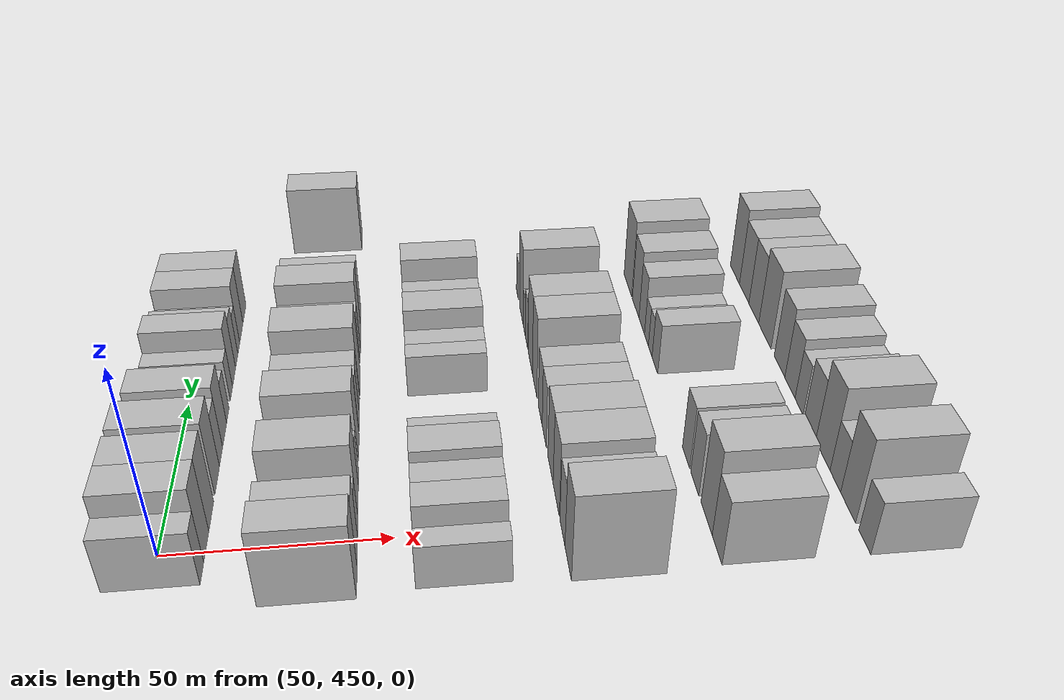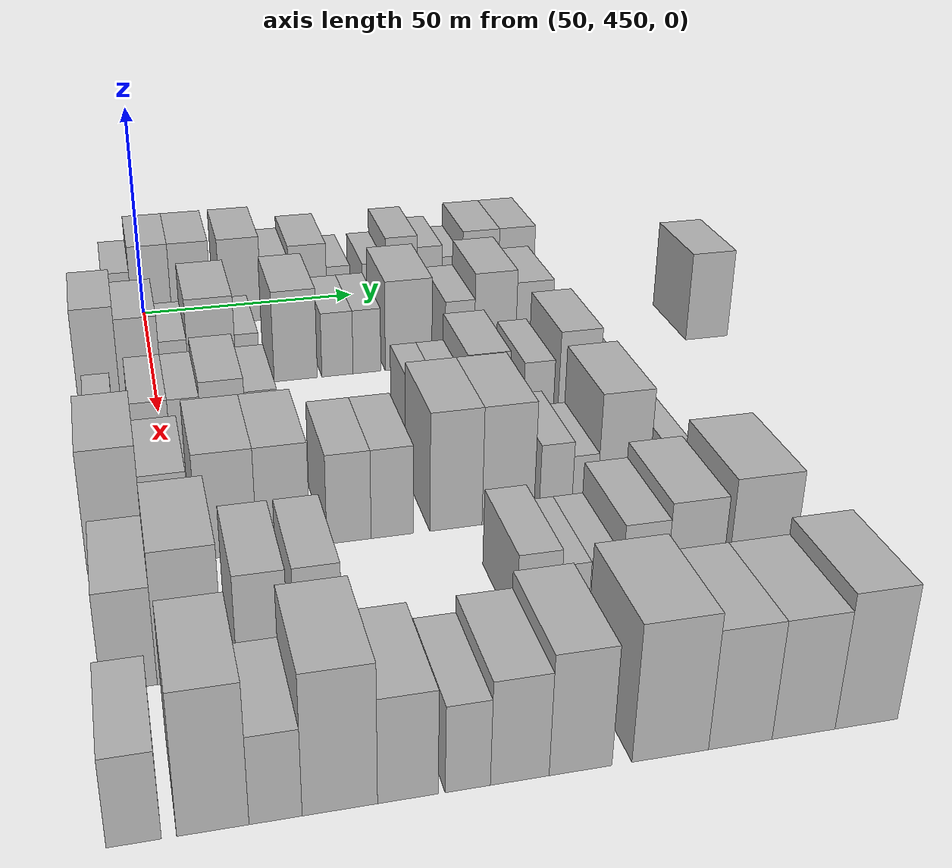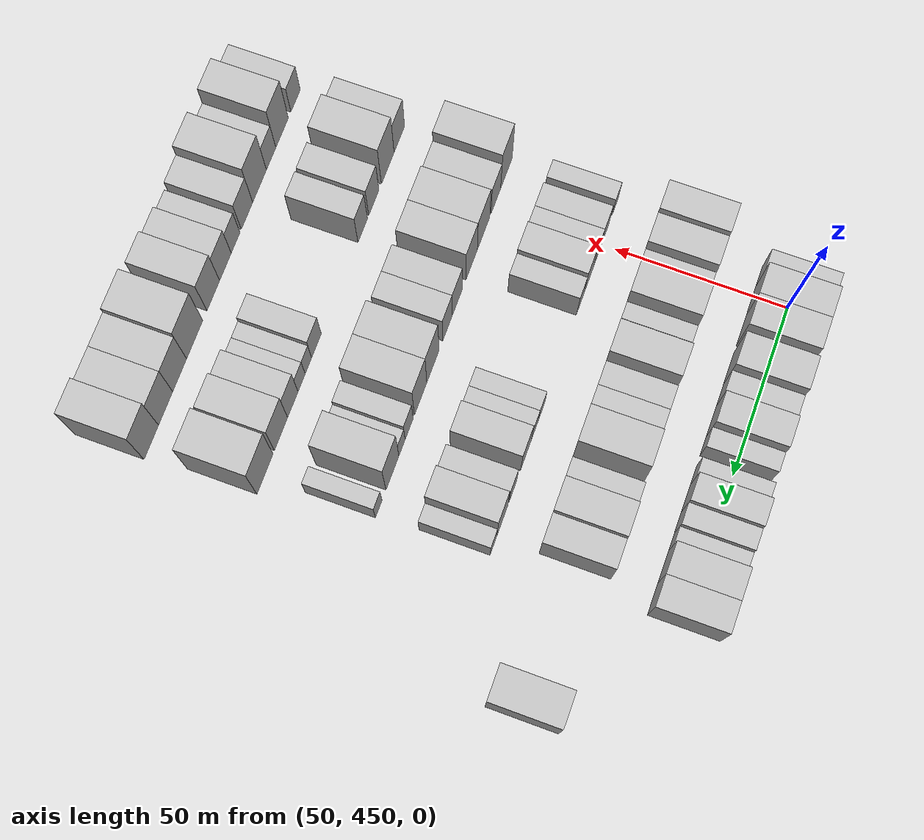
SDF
<sdf version="1.6">
 <world name="default">
  <model name="building_107">
   <static>1</static>
   <pose>50.0000 444.0672 0 0.000000 0.000000 0.000000</pose>
   <link name="link">
    <pose>0 0 7.50 0 0 0</pose>
    <collision name="collision"><geometry><box><size>20.0000 6.1715 15.0000</size></box></geometry></collision>
    <visual name="visual">
     <cast_shadows>0</cast_shadows>
     <geometry><box><size>20.0000 6.1715 15.0000</size></box></geometry>
     <material>
      <script>
       <uri>model://HANNAS_wall/materials/scripts</uri>
       <uri>model://HANNAS_wall/materials/textures</uri>
       <name>vrc/HANNAS_wall</name>
      </script>
     </material>
    </visual>
   </link>
  </model>
  <model name="building_108">
   <static>1</static>
   <pose>50.0000 451.6331 0 0.000000 0.000000 0.000000</pose>
   <link name="link">
    <pose>0 0 10.50 0 0 0</pose>
    <collision name="collision"><geometry><box><size>20.0000 8.9602 21.0000</size></box></geometry></collision>
    <visual name="visual">
     <cast_shadows>0</cast_shadows>
     <geometry><box><size>20.0000 8.9602 21.0000</size></box></geometry>
     <material>
      <script>
       <uri>model://HANNAS_wall/materials/scripts</uri>
       <uri>model://HANNAS_wall/materials/textures</uri>
       <name>vrc/HANNAS_wall</name>
      </script>
     </material>
    </visual>
   </link>
  </model>
  <model name="building_109">
   <static>1</static>
   <pose>50.0000 460.6906 0 0.000000 0.000000 0.000000</pose>
   <link name="link">
    <pose>0 0 10.50 0 0 0</pose>
    <collision name="collision"><geometry><box><size>20.0000 9.1547 21.0000</size></box></geometry></collision>
    <visual name="visual">
     <cast_shadows>0</cast_shadows>
     <geometry><box><size>20.0000 9.1547 21.0000</size></box></geometry>
     <material>
      <script>
       <uri>model://HANNAS_wall/materials/scripts</uri>
       <uri>model://HANNAS_wall/materials/textures</uri>
       <name>vrc/HANNAS_wall</name>
      </script>
     </material>
    </visual>
   </link>
  </model>
  <model name="building_110">
   <static>1</static>
   <pose>50.0000 472.0578 0 0.000000 0.000000 0.000000</pose>
   <link name="link">
    <pose>0 0 10.50 0 0 0</pose>
    <collision name="collision"><geometry><box><size>20.0000 9.5797 21.0000</size></box></geometry></collision>
    <visual name="visual">
     <cast_shadows>0</cast_shadows>
     <geometry><box><size>20.0000 9.5797 21.0000</size></box></geometry>
     <material>
      <script>
       <uri>model://HANNAS_wall/materials/scripts</uri>
       <uri>model://HANNAS_wall/materials/textures</uri>
       <name>vrc/HANNAS_wall</name>
      </script>
     </material>
    </visual>
   </link>
  </model>
  <model name="building_111">
   <static>1</static>
   <pose>50.0000 480.1647 0 0.000000 0.000000 0.000000</pose>
   <link name="link">
    <pose>0 0 7.50 0 0 0</pose>
    <collision name="collision"><geometry><box><size>20.0000 6.6340 15.0000</size></box></geometry></collision>
    <visual name="visual">
     <cast_shadows>0</cast_shadows>
     <geometry><box><size>20.0000 6.6340 15.0000</size></box></geometry>
     <material>
      <script>
       <uri>model://HANNAS_wall/materials/scripts</uri>
       <uri>model://HANNAS_wall/materials/textures</uri>
       <name>vrc/HANNAS_wall</name>
      </script>
     </material>
    </visual>
   </link>
  </model>
  <model name="building_112">
   <static>1</static>
   <pose>50.0000 487.9330 0 0.000000 0.000000 0.000000</pose>
   <link name="link">
    <pose>0 0 9.00 0 0 0</pose>
    <collision name="collision"><geometry><box><size>20.0000 8.9025 18.0000</size></box></geometry></collision>
    <visual name="visual">
     <cast_shadows>0</cast_shadows>
     <geometry><box><size>20.0000 8.9025 18.0000</size></box></geometry>
     <material>
      <script>
       <uri>model://HANNAS_wall/materials/scripts</uri>
       <uri>model://HANNAS_wall/materials/textures</uri>
       <name>vrc/HANNAS_wall</name>
      </script>
     </material>
    </visual>
   </link>
  </model>
  <model name="building_113">
   <static>1</static>
   <pose>50.0000 495.1755 0 0.000000 0.000000 0.000000</pose>
   <link name="link">
    <pose>0 0 6.00 0 0 0</pose>
    <collision name="collision"><geometry><box><size>20.0000 5.5825 12.0000</size></box></geometry></collision>
    <visual name="visual">
     <cast_shadows>0</cast_shadows>
     <geometry><box><size>20.0000 5.5825 12.0000</size></box></geometry>
     <material>
      <script>
       <uri>model://HANNAS_wall/materials/scripts</uri>
       <uri>model://HANNAS_wall/materials/textures</uri>
       <name>vrc/HANNAS_wall</name>
      </script>
     </material>
    </visual>
   </link>
  </model>
  <model name="building_114">
   <static>1</static>
   <pose>50.0000 503.7424 0 0.000000 0.000000 0.000000</pose>
   <link name="link">
    <pose>0 0 6.00 0 0 0</pose>
    <collision name="collision"><geometry><box><size>20.0000 5.5512 12.0000</size></box></geometry></collision>
    <visual name="visual">
     <cast_shadows>0</cast_shadows>
     <geometry><box><size>20.0000 5.5512 12.0000</size></box></geometry>
     <material>
      <script>
       <uri>model://HANNAS_wall/materials/scripts</uri>
       <uri>model://HANNAS_wall/materials/textures</uri>
       <name>vrc/HANNAS_wall</name>
      </script>
     </material>
    </visual>
   </link>
  </model>
  <model name="building_115">
   <static>1</static>
   <pose>50.0000 510.4065 0 0.000000 0.000000 0.000000</pose>
   <link name="link">
    <pose>0 0 9.00 0 0 0</pose>
    <collision name="collision"><geometry><box><size>20.0000 7.7771 18.0000</size></box></geometry></collision>
    <visual name="visual">
     <cast_shadows>0</cast_shadows>
     <geometry><box><size>20.0000 7.7771 18.0000</size></box></geometry>
     <material>
      <script>
       <uri>model://HANNAS_wall/materials/scripts</uri>
       <uri>model://HANNAS_wall/materials/textures</uri>
       <name>vrc/HANNAS_wall</name>
      </script>
     </material>
    </visual>
   </link>
  </model>
  <model name="building_116">
   <static>1</static>
   <pose>50.0000 517.3342 0 0.000000 0.000000 0.000000</pose>
   <link name="link">
    <pose>0 0 7.50 0 0 0</pose>
    <collision name="collision"><geometry><box><size>20.0000 6.0783 15.0000</size></box></geometry></collision>
    <visual name="visual">
     <cast_shadows>0</cast_shadows>
     <geometry><box><size>20.0000 6.0783 15.0000</size></box></geometry>
     <material>
      <script>
       <uri>model://HANNAS_wall/materials/scripts</uri>
       <uri>model://HANNAS_wall/materials/textures</uri>
       <name>vrc/HANNAS_wall</name>
      </script>
     </material>
    </visual>
   </link>
  </model>
  <model name="building_117">
   <static>1</static>
   <pose>50.0000 522.8787 0 0.000000 0.000000 0.000000</pose>
   <link name="link">
    <pose>0 0 6.00 0 0 0</pose>
    <collision name="collision"><geometry><box><size>20.0000 5.0108 12.0000</size></box></geometry></collision>
    <visual name="visual">
     <cast_shadows>0</cast_shadows>
     <geometry><box><size>20.0000 5.0108 12.0000</size></box></geometry>
     <material>
      <script>
       <uri>model://HANNAS_wall/materials/scripts</uri>
       <uri>model://HANNAS_wall/materials/textures</uri>
       <name>vrc/HANNAS_wall</name>
      </script>
     </material>
    </visual>
   </link>
  </model>
  <model name="building_118">
   <static>1</static>
   <pose>50.0000 529.8800 0 0.000000 0.000000 0.000000</pose>
   <link name="link">
    <pose>0 0 9.00 0 0 0</pose>
    <collision name="collision"><geometry><box><size>20.0000 8.9919 18.0000</size></box></geometry></collision>
    <visual name="visual">
     <cast_shadows>0</cast_shadows>
     <geometry><box><size>20.0000 8.9919 18.0000</size></box></geometry>
     <material>
      <script>
       <uri>model://HANNAS_wall/materials/scripts</uri>
       <uri>model://HANNAS_wall/materials/textures</uri>
       <name>vrc/HANNAS_wall</name>
      </script>
     </material>
    </visual>
   </link>
  </model>
  <model name="building_119">
   <static>1</static>
   <pose>50.0000 538.8130 0 0.000000 0.000000 0.000000</pose>
   <link name="link">
    <pose>0 0 9.00 0 0 0</pose>
    <collision name="collision"><geometry><box><size>20.0000 8.8741 18.0000</size></box></geometry></collision>
    <visual name="visual">
     <cast_shadows>0</cast_shadows>
     <geometry><box><size>20.0000 8.8741 18.0000</size></box></geometry>
     <material>
      <script>
       <uri>model://HANNAS_wall/materials/scripts</uri>
       <uri>model://HANNAS_wall/materials/textures</uri>
       <name>vrc/HANNAS_wall</name>
      </script>
     </material>
    </visual>
   </link>
  </model>
  <model name="building_226">
   <static>1</static>
   <pose>82.0000 438.2532 0 0.000000 0.000000 0.000000</pose>
   <link name="link">
    <pose>0 0 10.50 0 0 0</pose>
    <collision name="collision"><geometry><box><size>20.0000 8.6904 21.0000</size></box></geometry></collision>
    <visual name="visual">
     <cast_shadows>0</cast_shadows>
     <geometry><box><size>20.0000 8.6904 21.0000</size></box></geometry>
     <material>
      <script>
       <uri>model://HANNAS_wall/materials/scripts</uri>
       <uri>model://HANNAS_wall/materials/textures</uri>
       <name>vrc/HANNAS_wall</name>
      </script>
     </material>
    </visual>
   </link>
  </model>
  <model name="building_227">
   <static>1</static>
   <pose>82.0000 446.9644 0 0.000000 0.000000 0.000000</pose>
   <link name="link">
    <pose>0 0 9.00 0 0 0</pose>
    <collision name="collision"><geometry><box><size>20.0000 8.7321 18.0000</size></box></geometry></collision>
    <visual name="visual">
     <cast_shadows>0</cast_shadows>
     <geometry><box><size>20.0000 8.7321 18.0000</size></box></geometry>
     <material>
      <script>
       <uri>model://HANNAS_wall/materials/scripts</uri>
       <uri>model://HANNAS_wall/materials/textures</uri>
       <name>vrc/HANNAS_wall</name>
      </script>
     </material>
    </visual>
   </link>
  </model>
  <model name="building_228">
   <static>1</static>
   <pose>82.0000 454.2605 0 0.000000 0.000000 0.000000</pose>
   <link name="link">
    <pose>0 0 6.00 0 0 0</pose>
    <collision name="collision"><geometry><box><size>20.0000 5.8602 12.0000</size></box></geometry></collision>
    <visual name="visual">
     <cast_shadows>0</cast_shadows>
     <geometry><box><size>20.0000 5.8602 12.0000</size></box></geometry>
     <material>
      <script>
       <uri>model://HANNAS_wall/materials/scripts</uri>
       <uri>model://HANNAS_wall/materials/textures</uri>
       <name>vrc/HANNAS_wall</name>
      </script>
     </material>
    </visual>
   </link>
  </model>
  <model name="building_229">
   <static>1</static>
   <pose>82.0000 462.2145 0 0.000000 0.000000 0.000000</pose>
   <link name="link">
    <pose>0 0 10.50 0 0 0</pose>
    <collision name="collision"><geometry><box><size>20.0000 10.0478 21.0000</size></box></geometry></collision>
    <visual name="visual">
     <cast_shadows>0</cast_shadows>
     <geometry><box><size>20.0000 10.0478 21.0000</size></box></geometry>
     <material>
      <script>
       <uri>model://HANNAS_wall/materials/scripts</uri>
       <uri>model://HANNAS_wall/materials/textures</uri>
       <name>vrc/HANNAS_wall</name>
      </script>
     </material>
    </visual>
   </link>
  </model>
  <model name="building_230">
   <static>1</static>
   <pose>82.0000 469.7418 0 0.000000 0.000000 0.000000</pose>
   <link name="link">
    <pose>0 0 6.00 0 0 0</pose>
    <collision name="collision"><geometry><box><size>20.0000 5.0067 12.0000</size></box></geometry></collision>
    <visual name="visual">
     <cast_shadows>0</cast_shadows>
     <geometry><box><size>20.0000 5.0067 12.0000</size></box></geometry>
     <material>
      <script>
       <uri>model://HANNAS_wall/materials/scripts</uri>
       <uri>model://HANNAS_wall/materials/textures</uri>
       <name>vrc/HANNAS_wall</name>
      </script>
     </material>
    </visual>
   </link>
  </model>
  <model name="building_231">
   <static>1</static>
   <pose>82.0000 479.9413 0 0.000000 0.000000 0.000000</pose>
   <link name="link">
    <pose>0 0 10.50 0 0 0</pose>
    <collision name="collision"><geometry><box><size>20.0000 9.3923 21.0000</size></box></geometry></collision>
    <visual name="visual">
     <cast_shadows>0</cast_shadows>
     <geometry><box><size>20.0000 9.3923 21.0000</size></box></geometry>
     <material>
      <script>
       <uri>model://HANNAS_wall/materials/scripts</uri>
       <uri>model://HANNAS_wall/materials/textures</uri>
       <name>vrc/HANNAS_wall</name>
      </script>
     </material>
    </visual>
   </link>
  </model>
  <model name="building_232">
   <static>1</static>
   <pose>82.0000 489.0725 0 0.000000 0.000000 0.000000</pose>
   <link name="link">
    <pose>0 0 7.50 0 0 0</pose>
    <collision name="collision"><geometry><box><size>20.0000 6.8700 15.0000</size></box></geometry></collision>
    <visual name="visual">
     <cast_shadows>0</cast_shadows>
     <geometry><box><size>20.0000 6.8700 15.0000</size></box></geometry>
     <material>
      <script>
       <uri>model://HANNAS_wall/materials/scripts</uri>
       <uri>model://HANNAS_wall/materials/textures</uri>
       <name>vrc/HANNAS_wall</name>
      </script>
     </material>
    </visual>
   </link>
  </model>
  <model name="building_233">
   <static>1</static>
   <pose>82.0000 495.5823 0 0.000000 0.000000 0.000000</pose>
   <link name="link">
    <pose>0 0 7.50 0 0 0</pose>
    <collision name="collision"><geometry><box><size>20.0000 6.1497 15.0000</size></box></geometry></collision>
    <visual name="visual">
     <cast_shadows>0</cast_shadows>
     <geometry><box><size>20.0000 6.1497 15.0000</size></box></geometry>
     <material>
      <script>
       <uri>model://HANNAS_wall/materials/scripts</uri>
       <uri>model://HANNAS_wall/materials/textures</uri>
       <name>vrc/HANNAS_wall</name>
      </script>
     </material>
    </visual>
   </link>
  </model>
  <model name="building_234">
   <static>1</static>
   <pose>82.0000 504.8756 0 0.000000 0.000000 0.000000</pose>
   <link name="link">
    <pose>0 0 10.50 0 0 0</pose>
    <collision name="collision"><geometry><box><size>20.0000 10.4368 21.0000</size></box></geometry></collision>
    <visual name="visual">
     <cast_shadows>0</cast_shadows>
     <geometry><box><size>20.0000 10.4368 21.0000</size></box></geometry>
     <material>
      <script>
       <uri>model://HANNAS_wall/materials/scripts</uri>
       <uri>model://HANNAS_wall/materials/textures</uri>
       <name>vrc/HANNAS_wall</name>
      </script>
     </material>
    </visual>
   </link>
  </model>
  <model name="building_235">
   <static>1</static>
   <pose>82.0000 516.3991 0 0.000000 0.000000 0.000000</pose>
   <link name="link">
    <pose>0 0 7.50 0 0 0</pose>
    <collision name="collision"><geometry><box><size>20.0000 6.6102 15.0000</size></box></geometry></collision>
    <visual name="visual">
     <cast_shadows>0</cast_shadows>
     <geometry><box><size>20.0000 6.6102 15.0000</size></box></geometry>
     <material>
      <script>
       <uri>model://HANNAS_wall/materials/scripts</uri>
       <uri>model://HANNAS_wall/materials/textures</uri>
       <name>vrc/HANNAS_wall</name>
      </script>
     </material>
    </visual>
   </link>
  </model>
  <model name="building_236">
   <static>1</static>
   <pose>82.0000 524.4464 0 0.000000 0.000000 0.000000</pose>
   <link name="link">
    <pose>0 0 10.50 0 0 0</pose>
    <collision name="collision"><geometry><box><size>20.0000 9.4845 21.0000</size></box></geometry></collision>
    <visual name="visual">
     <cast_shadows>0</cast_shadows>
     <geometry><box><size>20.0000 9.4845 21.0000</size></box></geometry>
     <material>
      <script>
       <uri>model://HANNAS_wall/materials/scripts</uri>
       <uri>model://HANNAS_wall/materials/textures</uri>
       <name>vrc/HANNAS_wall</name>
      </script>
     </material>
    </visual>
   </link>
  </model>
  <model name="building_237">
   <static>1</static>
   <pose>82.0000 533.3791 0 0.000000 0.000000 0.000000</pose>
   <link name="link">
    <pose>0 0 9.00 0 0 0</pose>
    <collision name="collision"><geometry><box><size>20.0000 8.3810 18.0000</size></box></geometry></collision>
    <visual name="visual">
     <cast_shadows>0</cast_shadows>
     <geometry><box><size>20.0000 8.3810 18.0000</size></box></geometry>
     <material>
      <script>
       <uri>model://HANNAS_wall/materials/scripts</uri>
       <uri>model://HANNAS_wall/materials/textures</uri>
       <name>vrc/HANNAS_wall</name>
      </script>
     </material>
    </visual>
   </link>
  </model>
  <model name="building_238">
   <static>1</static>
   <pose>82.0000 574.8123 0 0.000000 0.000000 0.000000</pose>
   <link name="link">
    <pose>0 0 10.50 0 0 0</pose>
    <collision name="collision"><geometry><box><size>20.0000 10.1618 21.0000</size></box></geometry></collision>
    <visual name="visual">
     <cast_shadows>0</cast_shadows>
     <geometry><box><size>20.0000 10.1618 21.0000</size></box></geometry>
     <material>
      <script>
       <uri>model://HANNAS_wall/materials/scripts</uri>
       <uri>model://HANNAS_wall/materials/textures</uri>
       <name>vrc/HANNAS_wall</name>
      </script>
     </material>
    </visual>
   </link>
  </model>
  <model name="building_343">
   <static>1</static>
   <pose>114.0000 438.0793 0 0.000000 0.000000 0.000000</pose>
   <link name="link">
    <pose>0 0 6.00 0 0 0</pose>
    <collision name="collision"><geometry><box><size>20.0000 5.4327 12.0000</size></box></geometry></collision>
    <visual name="visual">
     <cast_shadows>0</cast_shadows>
     <geometry><box><size>20.0000 5.4327 12.0000</size></box></geometry>
     <material>
      <script>
       <uri>model://HANNAS_wall/materials/scripts</uri>
       <uri>model://HANNAS_wall/materials/textures</uri>
       <name>vrc/HANNAS_wall</name>
      </script>
     </material>
    </visual>
   </link>
  </model>
  <model name="building_344">
   <static>1</static>
   <pose>114.0000 447.3752 0 0.000000 0.000000 0.000000</pose>
   <link name="link">
    <pose>0 0 7.50 0 0 0</pose>
    <collision name="collision"><geometry><box><size>20.0000 7.1591 15.0000</size></box></geometry></collision>
    <visual name="visual">
     <cast_shadows>0</cast_shadows>
     <geometry><box><size>20.0000 7.1591 15.0000</size></box></geometry>
     <material>
      <script>
       <uri>model://HANNAS_wall/materials/scripts</uri>
       <uri>model://HANNAS_wall/materials/textures</uri>
       <name>vrc/HANNAS_wall</name>
      </script>
     </material>
    </visual>
   </link>
  </model>
  <model name="building_345">
   <static>1</static>
   <pose>114.0000 453.9645 0 0.000000 0.000000 0.000000</pose>
   <link name="link">
    <pose>0 0 7.50 0 0 0</pose>
    <collision name="collision"><geometry><box><size>20.0000 6.0195 15.0000</size></box></geometry></collision>
    <visual name="visual">
     <cast_shadows>0</cast_shadows>
     <geometry><box><size>20.0000 6.0195 15.0000</size></box></geometry>
     <material>
      <script>
       <uri>model://HANNAS_wall/materials/scripts</uri>
       <uri>model://HANNAS_wall/materials/textures</uri>
       <name>vrc/HANNAS_wall</name>
      </script>
     </material>
    </visual>
   </link>
  </model>
  <model name="building_346">
   <static>1</static>
   <pose>114.0000 461.2304 0 0.000000 0.000000 0.000000</pose>
   <link name="link">
    <pose>0 0 9.00 0 0 0</pose>
    <collision name="collision"><geometry><box><size>20.0000 8.5123 18.0000</size></box></geometry></collision>
    <visual name="visual">
     <cast_shadows>0</cast_shadows>
     <geometry><box><size>20.0000 8.5123 18.0000</size></box></geometry>
     <material>
      <script>
       <uri>model://HANNAS_wall/materials/scripts</uri>
       <uri>model://HANNAS_wall/materials/textures</uri>
       <name>vrc/HANNAS_wall</name>
      </script>
     </material>
    </visual>
   </link>
  </model>
  <model name="building_347">
   <static>1</static>
   <pose>114.0000 468.6368 0 0.000000 0.000000 0.000000</pose>
   <link name="link">
    <pose>0 0 7.50 0 0 0</pose>
    <collision name="collision"><geometry><box><size>20.0000 6.3004 15.0000</size></box></geometry></collision>
    <visual name="visual">
     <cast_shadows>0</cast_shadows>
     <geometry><box><size>20.0000 6.3004 15.0000</size></box></geometry>
     <material>
      <script>
       <uri>model://HANNAS_wall/materials/scripts</uri>
       <uri>model://HANNAS_wall/materials/textures</uri>
       <name>vrc/HANNAS_wall</name>
      </script>
     </material>
    </visual>
   </link>
  </model>
  <model name="building_348">
   <static>1</static>
   <pose>114.0000 500.9599 0 0.000000 0.000000 0.000000</pose>
   <link name="link">
    <pose>0 0 6.00 0 0 0</pose>
    <collision name="collision"><geometry><box><size>20.0000 5.4486 12.0000</size></box></geometry></collision>
    <visual name="visual">
     <cast_shadows>0</cast_shadows>
     <geometry><box><size>20.0000 5.4486 12.0000</size></box></geometry>
     <material>
      <script>
       <uri>model://HANNAS_wall/materials/scripts</uri>
       <uri>model://HANNAS_wall/materials/textures</uri>
       <name>vrc/HANNAS_wall</name>
      </script>
     </material>
    </visual>
   </link>
  </model>
  <model name="building_349">
   <static>1</static>
   <pose>114.0000 506.6096 0 0.000000 0.000000 0.000000</pose>
   <link name="link">
    <pose>0 0 6.00 0 0 0</pose>
    <collision name="collision"><geometry><box><size>20.0000 5.8508 12.0000</size></box></geometry></collision>
    <visual name="visual">
     <cast_shadows>0</cast_shadows>
     <geometry><box><size>20.0000 5.8508 12.0000</size></box></geometry>
     <material>
      <script>
       <uri>model://HANNAS_wall/materials/scripts</uri>
       <uri>model://HANNAS_wall/materials/textures</uri>
       <name>vrc/HANNAS_wall</name>
      </script>
     </material>
    </visual>
   </link>
  </model>
  <model name="building_350">
   <static>1</static>
   <pose>114.0000 513.8729 0 0.000000 0.000000 0.000000</pose>
   <link name="link">
    <pose>0 0 9.00 0 0 0</pose>
    <collision name="collision"><geometry><box><size>20.0000 8.6758 18.0000</size></box></geometry></collision>
    <visual name="visual">
     <cast_shadows>0</cast_shadows>
     <geometry><box><size>20.0000 8.6758 18.0000</size></box></geometry>
     <material>
      <script>
       <uri>model://HANNAS_wall/materials/scripts</uri>
       <uri>model://HANNAS_wall/materials/textures</uri>
       <name>vrc/HANNAS_wall</name>
      </script>
     </material>
    </visual>
   </link>
  </model>
  <model name="building_351">
   <static>1</static>
   <pose>114.0000 524.3638 0 0.000000 0.000000 0.000000</pose>
   <link name="link">
    <pose>0 0 7.50 0 0 0</pose>
    <collision name="collision"><geometry><box><size>20.0000 6.3061 15.0000</size></box></geometry></collision>
    <visual name="visual">
     <cast_shadows>0</cast_shadows>
     <geometry><box><size>20.0000 6.3061 15.0000</size></box></geometry>
     <material>
      <script>
       <uri>model://HANNAS_wall/materials/scripts</uri>
       <uri>model://HANNAS_wall/materials/textures</uri>
       <name>vrc/HANNAS_wall</name>
      </script>
     </material>
    </visual>
   </link>
  </model>
  <model name="building_352">
   <static>1</static>
   <pose>114.0000 532.8380 0 0.000000 0.000000 0.000000</pose>
   <link name="link">
    <pose>0 0 10.50 0 0 0</pose>
    <collision name="collision"><geometry><box><size>20.0000 8.6424 21.0000</size></box></geometry></collision>
    <visual name="visual">
     <cast_shadows>0</cast_shadows>
     <geometry><box><size>20.0000 8.6424 21.0000</size></box></geometry>
     <material>
      <script>
       <uri>model://HANNAS_wall/materials/scripts</uri>
       <uri>model://HANNAS_wall/materials/textures</uri>
       <name>vrc/HANNAS_wall</name>
      </script>
     </material>
    </visual>
   </link>
  </model>
  <model name="building_353">
   <static>1</static>
   <pose>114.0000 539.7852 0 0.000000 0.000000 0.000000</pose>
   <link name="link">
    <pose>0 0 6.00 0 0 0</pose>
    <collision name="collision"><geometry><box><size>20.0000 5.2519 12.0000</size></box></geometry></collision>
    <visual name="visual">
     <cast_shadows>0</cast_shadows>
     <geometry><box><size>20.0000 5.2519 12.0000</size></box></geometry>
     <material>
      <script>
       <uri>model://HANNAS_wall/materials/scripts</uri>
       <uri>model://HANNAS_wall/materials/textures</uri>
       <name>vrc/HANNAS_wall</name>
      </script>
     </material>
    </visual>
   </link>
  </model>
  <model name="building_462">
   <static>1</static>
   <pose>146.0000 439.0185 0 0.000000 0.000000 0.000000</pose>
   <link name="link">
    <pose>0 0 12.00 0 0 0</pose>
    <collision name="collision"><geometry><box><size>20.0000 9.7305 24.0000</size></box></geometry></collision>
    <visual name="visual">
     <cast_shadows>0</cast_shadows>
     <geometry><box><size>20.0000 9.7305 24.0000</size></box></geometry>
     <material>
      <script>
       <uri>model://HANNAS_wall/materials/scripts</uri>
       <uri>model://HANNAS_wall/materials/textures</uri>
       <name>vrc/HANNAS_wall</name>
      </script>
     </material>
    </visual>
   </link>
  </model>
  <model name="building_463">
   <static>1</static>
   <pose>146.0000 447.8997 0 0.000000 0.000000 0.000000</pose>
   <link name="link">
    <pose>0 0 9.00 0 0 0</pose>
    <collision name="collision"><geometry><box><size>20.0000 8.0318 18.0000</size></box></geometry></collision>
    <visual name="visual">
     <cast_shadows>0</cast_shadows>
     <geometry><box><size>20.0000 8.0318 18.0000</size></box></geometry>
     <material>
      <script>
       <uri>model://HANNAS_wall/materials/scripts</uri>
       <uri>model://HANNAS_wall/materials/textures</uri>
       <name>vrc/HANNAS_wall</name>
      </script>
     </material>
    </visual>
   </link>
  </model>
  <model name="building_464">
   <static>1</static>
   <pose>146.0000 458.0684 0 0.000000 0.000000 0.000000</pose>
   <link name="link">
    <pose>0 0 10.50 0 0 0</pose>
    <collision name="collision"><geometry><box><size>20.0000 10.3057 21.0000</size></box></geometry></collision>
    <visual name="visual">
     <cast_shadows>0</cast_shadows>
     <geometry><box><size>20.0000 10.3057 21.0000</size></box></geometry>
     <material>
      <script>
       <uri>model://HANNAS_wall/materials/scripts</uri>
       <uri>model://HANNAS_wall/materials/textures</uri>
       <name>vrc/HANNAS_wall</name>
      </script>
     </material>
    </visual>
   </link>
  </model>
  <model name="building_465">
   <static>1</static>
   <pose>146.0000 467.8777 0 0.000000 0.000000 0.000000</pose>
   <link name="link">
    <pose>0 0 10.50 0 0 0</pose>
    <collision name="collision"><geometry><box><size>20.0000 9.3127 21.0000</size></box></geometry></collision>
    <visual name="visual">
     <cast_shadows>0</cast_shadows>
     <geometry><box><size>20.0000 9.3127 21.0000</size></box></geometry>
     <material>
      <script>
       <uri>model://HANNAS_wall/materials/scripts</uri>
       <uri>model://HANNAS_wall/materials/textures</uri>
       <name>vrc/HANNAS_wall</name>
      </script>
     </material>
    </visual>
   </link>
  </model>
  <model name="building_466">
   <static>1</static>
   <pose>146.0000 479.5194 0 0.000000 0.000000 0.000000</pose>
   <link name="link">
    <pose>0 0 9.00 0 0 0</pose>
    <collision name="collision"><geometry><box><size>20.0000 7.9707 18.0000</size></box></geometry></collision>
    <visual name="visual">
     <cast_shadows>0</cast_shadows>
     <geometry><box><size>20.0000 7.9707 18.0000</size></box></geometry>
     <material>
      <script>
       <uri>model://HANNAS_wall/materials/scripts</uri>
       <uri>model://HANNAS_wall/materials/textures</uri>
       <name>vrc/HANNAS_wall</name>
      </script>
     </material>
    </visual>
   </link>
  </model>
  <model name="building_467">
   <static>1</static>
   <pose>146.0000 487.3529 0 0.000000 0.000000 0.000000</pose>
   <link name="link">
    <pose>0 0 9.00 0 0 0</pose>
    <collision name="collision"><geometry><box><size>20.0000 7.6963 18.0000</size></box></geometry></collision>
    <visual name="visual">
     <cast_shadows>0</cast_shadows>
     <geometry><box><size>20.0000 7.6963 18.0000</size></box></geometry>
     <material>
      <script>
       <uri>model://HANNAS_wall/materials/scripts</uri>
       <uri>model://HANNAS_wall/materials/textures</uri>
       <name>vrc/HANNAS_wall</name>
      </script>
     </material>
    </visual>
   </link>
  </model>
  <model name="building_468">
   <static>1</static>
   <pose>146.0000 499.0383 0 0.000000 0.000000 0.000000</pose>
   <link name="link">
    <pose>0 0 12.00 0 0 0</pose>
    <collision name="collision"><geometry><box><size>20.0000 9.6745 24.0000</size></box></geometry></collision>
    <visual name="visual">
     <cast_shadows>0</cast_shadows>
     <geometry><box><size>20.0000 9.6745 24.0000</size></box></geometry>
     <material>
      <script>
       <uri>model://HANNAS_wall/materials/scripts</uri>
       <uri>model://HANNAS_wall/materials/textures</uri>
       <name>vrc/HANNAS_wall</name>
      </script>
     </material>
    </visual>
   </link>
  </model>
  <model name="building_469">
   <static>1</static>
   <pose>146.0000 508.7243 0 0.000000 0.000000 0.000000</pose>
   <link name="link">
    <pose>0 0 12.00 0 0 0</pose>
    <collision name="collision"><geometry><box><size>20.0000 9.6975 24.0000</size></box></geometry></collision>
    <visual name="visual">
     <cast_shadows>0</cast_shadows>
     <geometry><box><size>20.0000 9.6975 24.0000</size></box></geometry>
     <material>
      <script>
       <uri>model://HANNAS_wall/materials/scripts</uri>
       <uri>model://HANNAS_wall/materials/textures</uri>
       <name>vrc/HANNAS_wall</name>
      </script>
     </material>
    </visual>
   </link>
  </model>
  <model name="building_470">
   <static>1</static>
   <pose>146.0000 517.6648 0 0.000000 0.000000 0.000000</pose>
   <link name="link">
    <pose>0 0 7.50 0 0 0</pose>
    <collision name="collision"><geometry><box><size>20.0000 6.1834 15.0000</size></box></geometry></collision>
    <visual name="visual">
     <cast_shadows>0</cast_shadows>
     <geometry><box><size>20.0000 6.1834 15.0000</size></box></geometry>
     <material>
      <script>
       <uri>model://HANNAS_wall/materials/scripts</uri>
       <uri>model://HANNAS_wall/materials/textures</uri>
       <name>vrc/HANNAS_wall</name>
      </script>
     </material>
    </visual>
   </link>
  </model>
  <model name="building_471">
   <static>1</static>
   <pose>146.0000 523.1572 0 0.000000 0.000000 0.000000</pose>
   <link name="link">
    <pose>0 0 6.00 0 0 0</pose>
    <collision name="collision"><geometry><box><size>20.0000 4.8015 12.0000</size></box></geometry></collision>
    <visual name="visual">
     <cast_shadows>0</cast_shadows>
     <geometry><box><size>20.0000 4.8015 12.0000</size></box></geometry>
     <material>
      <script>
       <uri>model://HANNAS_wall/materials/scripts</uri>
       <uri>model://HANNAS_wall/materials/textures</uri>
       <name>vrc/HANNAS_wall</name>
      </script>
     </material>
    </visual>
   </link>
  </model>
  <model name="building_472">
   <static>1</static>
   <pose>146.0000 530.4725 0 0.000000 0.000000 0.000000</pose>
   <link name="link">
    <pose>0 0 12.00 0 0 0</pose>
    <collision name="collision"><geometry><box><size>20.0000 9.8292 24.0000</size></box></geometry></collision>
    <visual name="visual">
     <cast_shadows>0</cast_shadows>
     <geometry><box><size>20.0000 9.8292 24.0000</size></box></geometry>
     <material>
      <script>
       <uri>model://HANNAS_wall/materials/scripts</uri>
       <uri>model://HANNAS_wall/materials/textures</uri>
       <name>vrc/HANNAS_wall</name>
      </script>
     </material>
    </visual>
   </link>
  </model>
  <model name="building_473">
   <static>1</static>
   <pose>146.0000 540.8712 0 0.000000 0.000000 0.000000</pose>
   <link name="link">
    <pose>0 0 6.00 0 0 0</pose>
    <collision name="collision"><geometry><box><size>20.0000 4.9683 12.0000</size></box></geometry></collision>
    <visual name="visual">
     <cast_shadows>0</cast_shadows>
     <geometry><box><size>20.0000 4.9683 12.0000</size></box></geometry>
     <material>
      <script>
       <uri>model://HANNAS_wall/materials/scripts</uri>
       <uri>model://HANNAS_wall/materials/textures</uri>
       <name>vrc/HANNAS_wall</name>
      </script>
     </material>
    </visual>
   </link>
  </model>
  <model name="building_576">
   <static>1</static>
   <pose>178.0000 439.5459 0 0.000000 0.000000 0.000000</pose>
   <link name="link">
    <pose>0 0 9.00 0 0 0</pose>
    <collision name="collision"><geometry><box><size>20.0000 8.4609 18.0000</size></box></geometry></collision>
    <visual name="visual">
     <cast_shadows>0</cast_shadows>
     <geometry><box><size>20.0000 8.4609 18.0000</size></box></geometry>
     <material>
      <script>
       <uri>model://HANNAS_wall/materials/scripts</uri>
       <uri>model://HANNAS_wall/materials/textures</uri>
       <name>vrc/HANNAS_wall</name>
      </script>
     </material>
    </visual>
   </link>
  </model>
  <model name="building_577">
   <static>1</static>
   <pose>178.0000 448.8531 0 0.000000 0.000000 0.000000</pose>
   <link name="link">
    <pose>0 0 12.00 0 0 0</pose>
    <collision name="collision"><geometry><box><size>20.0000 10.1536 24.0000</size></box></geometry></collision>
    <visual name="visual">
     <cast_shadows>0</cast_shadows>
     <geometry><box><size>20.0000 10.1536 24.0000</size></box></geometry>
     <material>
      <script>
       <uri>model://HANNAS_wall/materials/scripts</uri>
       <uri>model://HANNAS_wall/materials/textures</uri>
       <name>vrc/HANNAS_wall</name>
      </script>
     </material>
    </visual>
   </link>
  </model>
  <model name="building_578">
   <static>1</static>
   <pose>178.0000 459.9464 0 0.000000 0.000000 0.000000</pose>
   <link name="link">
    <pose>0 0 9.00 0 0 0</pose>
    <collision name="collision"><geometry><box><size>20.0000 8.0330 18.0000</size></box></geometry></collision>
    <visual name="visual">
     <cast_shadows>0</cast_shadows>
     <geometry><box><size>20.0000 8.0330 18.0000</size></box></geometry>
     <material>
      <script>
       <uri>model://HANNAS_wall/materials/scripts</uri>
       <uri>model://HANNAS_wall/materials/textures</uri>
       <name>vrc/HANNAS_wall</name>
      </script>
     </material>
    </visual>
   </link>
  </model>
  <model name="building_579">
   <static>1</static>
   <pose>178.0000 468.6911 0 0.000000 0.000000 0.000000</pose>
   <link name="link">
    <pose>0 0 9.00 0 0 0</pose>
    <collision name="collision"><geometry><box><size>20.0000 7.4565 18.0000</size></box></geometry></collision>
    <visual name="visual">
     <cast_shadows>0</cast_shadows>
     <geometry><box><size>20.0000 7.4565 18.0000</size></box></geometry>
     <material>
      <script>
       <uri>model://HANNAS_wall/materials/scripts</uri>
       <uri>model://HANNAS_wall/materials/textures</uri>
       <name>vrc/HANNAS_wall</name>
      </script>
     </material>
    </visual>
   </link>
  </model>
  <model name="building_580">
   <static>1</static>
   <pose>178.0000 504.3354 0 0.000000 0.000000 0.000000</pose>
   <link name="link">
    <pose>0 0 7.50 0 0 0</pose>
    <collision name="collision"><geometry><box><size>20.0000 7.2773 15.0000</size></box></geometry></collision>
    <visual name="visual">
     <cast_shadows>0</cast_shadows>
     <geometry><box><size>20.0000 7.2773 15.0000</size></box></geometry>
     <material>
      <script>
       <uri>model://HANNAS_wall/materials/scripts</uri>
       <uri>model://HANNAS_wall/materials/textures</uri>
       <name>vrc/HANNAS_wall</name>
      </script>
     </material>
    </visual>
   </link>
  </model>
  <model name="building_581">
   <static>1</static>
   <pose>178.0000 510.3978 0 0.000000 0.000000 0.000000</pose>
   <link name="link">
    <pose>0 0 6.00 0 0 0</pose>
    <collision name="collision"><geometry><box><size>20.0000 4.8475 12.0000</size></box></geometry></collision>
    <visual name="visual">
     <cast_shadows>0</cast_shadows>
     <geometry><box><size>20.0000 4.8475 12.0000</size></box></geometry>
     <material>
      <script>
       <uri>model://HANNAS_wall/materials/scripts</uri>
       <uri>model://HANNAS_wall/materials/textures</uri>
       <name>vrc/HANNAS_wall</name>
      </script>
     </material>
    </visual>
   </link>
  </model>
  <model name="building_582">
   <static>1</static>
   <pose>178.0000 515.4834 0 0.000000 0.000000 0.000000</pose>
   <link name="link">
    <pose>0 0 6.00 0 0 0</pose>
    <collision name="collision"><geometry><box><size>20.0000 5.3237 12.0000</size></box></geometry></collision>
    <visual name="visual">
     <cast_shadows>0</cast_shadows>
     <geometry><box><size>20.0000 5.3237 12.0000</size></box></geometry>
     <material>
      <script>
       <uri>model://HANNAS_wall/materials/scripts</uri>
       <uri>model://HANNAS_wall/materials/textures</uri>
       <name>vrc/HANNAS_wall</name>
      </script>
     </material>
    </visual>
   </link>
  </model>
  <model name="building_583">
   <static>1</static>
   <pose>178.0000 521.9844 0 0.000000 0.000000 0.000000</pose>
   <link name="link">
    <pose>0 0 9.00 0 0 0</pose>
    <collision name="collision"><geometry><box><size>20.0000 7.6784 18.0000</size></box></geometry></collision>
    <visual name="visual">
     <cast_shadows>0</cast_shadows>
     <geometry><box><size>20.0000 7.6784 18.0000</size></box></geometry>
     <material>
      <script>
       <uri>model://HANNAS_wall/materials/scripts</uri>
       <uri>model://HANNAS_wall/materials/textures</uri>
       <name>vrc/HANNAS_wall</name>
      </script>
     </material>
    </visual>
   </link>
  </model>
  <model name="building_584">
   <static>1</static>
   <pose>178.0000 530.6639 0 0.000000 0.000000 0.000000</pose>
   <link name="link">
    <pose>0 0 10.50 0 0 0</pose>
    <collision name="collision"><geometry><box><size>20.0000 9.6806 21.0000</size></box></geometry></collision>
    <visual name="visual">
     <cast_shadows>0</cast_shadows>
     <geometry><box><size>20.0000 9.6806 21.0000</size></box></geometry>
     <material>
      <script>
       <uri>model://HANNAS_wall/materials/scripts</uri>
       <uri>model://HANNAS_wall/materials/textures</uri>
       <name>vrc/HANNAS_wall</name>
      </script>
     </material>
    </visual>
   </link>
  </model>
  <model name="building_585">
   <static>1</static>
   <pose>178.0000 542.3404 0 0.000000 0.000000 0.000000</pose>
   <link name="link">
    <pose>0 0 12.00 0 0 0</pose>
    <collision name="collision"><geometry><box><size>20.0000 11.6725 24.0000</size></box></geometry></collision>
    <visual name="visual">
     <cast_shadows>0</cast_shadows>
     <geometry><box><size>20.0000 11.6725 24.0000</size></box></geometry>
     <material>
      <script>
       <uri>model://HANNAS_wall/materials/scripts</uri>
       <uri>model://HANNAS_wall/materials/textures</uri>
       <name>vrc/HANNAS_wall</name>
      </script>
     </material>
    </visual>
   </link>
  </model>
  <model name="building_699">
   <static>1</static>
   <pose>210.0000 438.4918 0 0.000000 0.000000 0.000000</pose>
   <link name="link">
    <pose>0 0 7.50 0 0 0</pose>
    <collision name="collision"><geometry><box><size>20.0000 7.2462 15.0000</size></box></geometry></collision>
    <visual name="visual">
     <cast_shadows>0</cast_shadows>
     <geometry><box><size>20.0000 7.2462 15.0000</size></box></geometry>
     <material>
      <script>
       <uri>model://HANNAS_wall/materials/scripts</uri>
       <uri>model://HANNAS_wall/materials/textures</uri>
       <name>vrc/HANNAS_wall</name>
      </script>
     </material>
    </visual>
   </link>
  </model>
  <model name="building_700">
   <static>1</static>
   <pose>210.0000 448.9445 0 0.000000 0.000000 0.000000</pose>
   <link name="link">
    <pose>0 0 12.00 0 0 0</pose>
    <collision name="collision"><geometry><box><size>20.0000 9.6592 24.0000</size></box></geometry></collision>
    <visual name="visual">
     <cast_shadows>0</cast_shadows>
     <geometry><box><size>20.0000 9.6592 24.0000</size></box></geometry>
     <material>
      <script>
       <uri>model://HANNAS_wall/materials/scripts</uri>
       <uri>model://HANNAS_wall/materials/textures</uri>
       <name>vrc/HANNAS_wall</name>
      </script>
     </material>
    </visual>
   </link>
  </model>
  <model name="building_701">
   <static>1</static>
   <pose>210.0000 457.3791 0 0.000000 0.000000 0.000000</pose>
   <link name="link">
    <pose>0 0 7.50 0 0 0</pose>
    <collision name="collision"><geometry><box><size>20.0000 7.2101 15.0000</size></box></geometry></collision>
    <visual name="visual">
     <cast_shadows>0</cast_shadows>
     <geometry><box><size>20.0000 7.2101 15.0000</size></box></geometry>
     <material>
      <script>
       <uri>model://HANNAS_wall/materials/scripts</uri>
       <uri>model://HANNAS_wall/materials/textures</uri>
       <name>vrc/HANNAS_wall</name>
      </script>
     </material>
    </visual>
   </link>
  </model>
  <model name="building_702">
   <static>1</static>
   <pose>210.0000 466.1867 0 0.000000 0.000000 0.000000</pose>
   <link name="link">
    <pose>0 0 12.00 0 0 0</pose>
    <collision name="collision"><geometry><box><size>20.0000 10.4051 24.0000</size></box></geometry></collision>
    <visual name="visual">
     <cast_shadows>0</cast_shadows>
     <geometry><box><size>20.0000 10.4051 24.0000</size></box></geometry>
     <material>
      <script>
       <uri>model://HANNAS_wall/materials/scripts</uri>
       <uri>model://HANNAS_wall/materials/textures</uri>
       <name>vrc/HANNAS_wall</name>
      </script>
     </material>
    </visual>
   </link>
  </model>
  <model name="building_703">
   <static>1</static>
   <pose>210.0000 475.6529 0 0.000000 0.000000 0.000000</pose>
   <link name="link">
    <pose>0 0 9.00 0 0 0</pose>
    <collision name="collision"><geometry><box><size>20.0000 8.5273 18.0000</size></box></geometry></collision>
    <visual name="visual">
     <cast_shadows>0</cast_shadows>
     <geometry><box><size>20.0000 8.5273 18.0000</size></box></geometry>
     <material>
      <script>
       <uri>model://HANNAS_wall/materials/scripts</uri>
       <uri>model://HANNAS_wall/materials/textures</uri>
       <name>vrc/HANNAS_wall</name>
      </script>
     </material>
    </visual>
   </link>
  </model>
  <model name="building_704">
   <static>1</static>
   <pose>210.0000 484.1553 0 0.000000 0.000000 0.000000</pose>
   <link name="link">
    <pose>0 0 7.50 0 0 0</pose>
    <collision name="collision"><geometry><box><size>20.0000 6.4775 15.0000</size></box></geometry></collision>
    <visual name="visual">
     <cast_shadows>0</cast_shadows>
     <geometry><box><size>20.0000 6.4775 15.0000</size></box></geometry>
     <material>
      <script>
       <uri>model://HANNAS_wall/materials/scripts</uri>
       <uri>model://HANNAS_wall/materials/textures</uri>
       <name>vrc/HANNAS_wall</name>
      </script>
     </material>
    </visual>
   </link>
  </model>
  <model name="building_705">
   <static>1</static>
   <pose>210.0000 491.6634 0 0.000000 0.000000 0.000000</pose>
   <link name="link">
    <pose>0 0 9.00 0 0 0</pose>
    <collision name="collision"><geometry><box><size>20.0000 8.5386 18.0000</size></box></geometry></collision>
    <visual name="visual">
     <cast_shadows>0</cast_shadows>
     <geometry><box><size>20.0000 8.5386 18.0000</size></box></geometry>
     <material>
      <script>
       <uri>model://HANNAS_wall/materials/scripts</uri>
       <uri>model://HANNAS_wall/materials/textures</uri>
       <name>vrc/HANNAS_wall</name>
      </script>
     </material>
    </visual>
   </link>
  </model>
  <model name="building_706">
   <static>1</static>
   <pose>210.0000 500.5824 0 0.000000 0.000000 0.000000</pose>
   <link name="link">
    <pose>0 0 10.50 0 0 0</pose>
    <collision name="collision"><geometry><box><size>20.0000 9.2994 21.0000</size></box></geometry></collision>
    <visual name="visual">
     <cast_shadows>0</cast_shadows>
     <geometry><box><size>20.0000 9.2994 21.0000</size></box></geometry>
     <material>
      <script>
       <uri>model://HANNAS_wall/materials/scripts</uri>
       <uri>model://HANNAS_wall/materials/textures</uri>
       <name>vrc/HANNAS_wall</name>
      </script>
     </material>
    </visual>
   </link>
  </model>
  <model name="building_707">
   <static>1</static>
   <pose>210.0000 514.0422 0 0.000000 0.000000 0.000000</pose>
   <link name="link">
    <pose>0 0 12.00 0 0 0</pose>
    <collision name="collision"><geometry><box><size>20.0000 11.6201 24.0000</size></box></geometry></collision>
    <visual name="visual">
     <cast_shadows>0</cast_shadows>
     <geometry><box><size>20.0000 11.6201 24.0000</size></box></geometry>
     <material>
      <script>
       <uri>model://HANNAS_wall/materials/scripts</uri>
       <uri>model://HANNAS_wall/materials/textures</uri>
       <name>vrc/HANNAS_wall</name>
      </script>
     </material>
    </visual>
   </link>
  </model>
  <model name="building_708">
   <static>1</static>
   <pose>210.0000 524.7780 0 0.000000 0.000000 0.000000</pose>
   <link name="link">
    <pose>0 0 10.50 0 0 0</pose>
    <collision name="collision"><geometry><box><size>20.0000 9.8516 21.0000</size></box></geometry></collision>
    <visual name="visual">
     <cast_shadows>0</cast_shadows>
     <geometry><box><size>20.0000 9.8516 21.0000</size></box></geometry>
     <material>
      <script>
       <uri>model://HANNAS_wall/materials/scripts</uri>
       <uri>model://HANNAS_wall/materials/textures</uri>
       <name>vrc/HANNAS_wall</name>
      </script>
     </material>
    </visual>
   </link>
  </model>
  <model name="building_709">
   <static>1</static>
   <pose>210.0000 534.6839 0 0.000000 0.000000 0.000000</pose>
   <link name="link">
    <pose>0 0 10.50 0 0 0</pose>
    <collision name="collision"><geometry><box><size>20.0000 9.9601 21.0000</size></box></geometry></collision>
    <visual name="visual">
     <cast_shadows>0</cast_shadows>
     <geometry><box><size>20.0000 9.9601 21.0000</size></box></geometry>
     <material>
      <script>
       <uri>model://HANNAS_wall/materials/scripts</uri>
       <uri>model://HANNAS_wall/materials/textures</uri>
       <name>vrc/HANNAS_wall</name>
      </script>
     </material>
    </visual>
   </link>
  </model>
  <model name="building_710">
   <static>1</static>
   <pose>210.0000 544.6869 0 0.000000 0.000000 0.000000</pose>
   <link name="link">
    <pose>0 0 12.00 0 0 0</pose>
    <collision name="collision"><geometry><box><size>20.0000 10.0461 24.0000</size></box></geometry></collision>
    <visual name="visual">
     <cast_shadows>0</cast_shadows>
     <geometry><box><size>20.0000 10.0461 24.0000</size></box></geometry>
     <material>
      <script>
       <uri>model://HANNAS_wall/materials/scripts</uri>
       <uri>model://HANNAS_wall/materials/textures</uri>
       <name>vrc/HANNAS_wall</name>
      </script>
     </material>
    </visual>
   </link>
  </model>
 </world>
</sdf>
